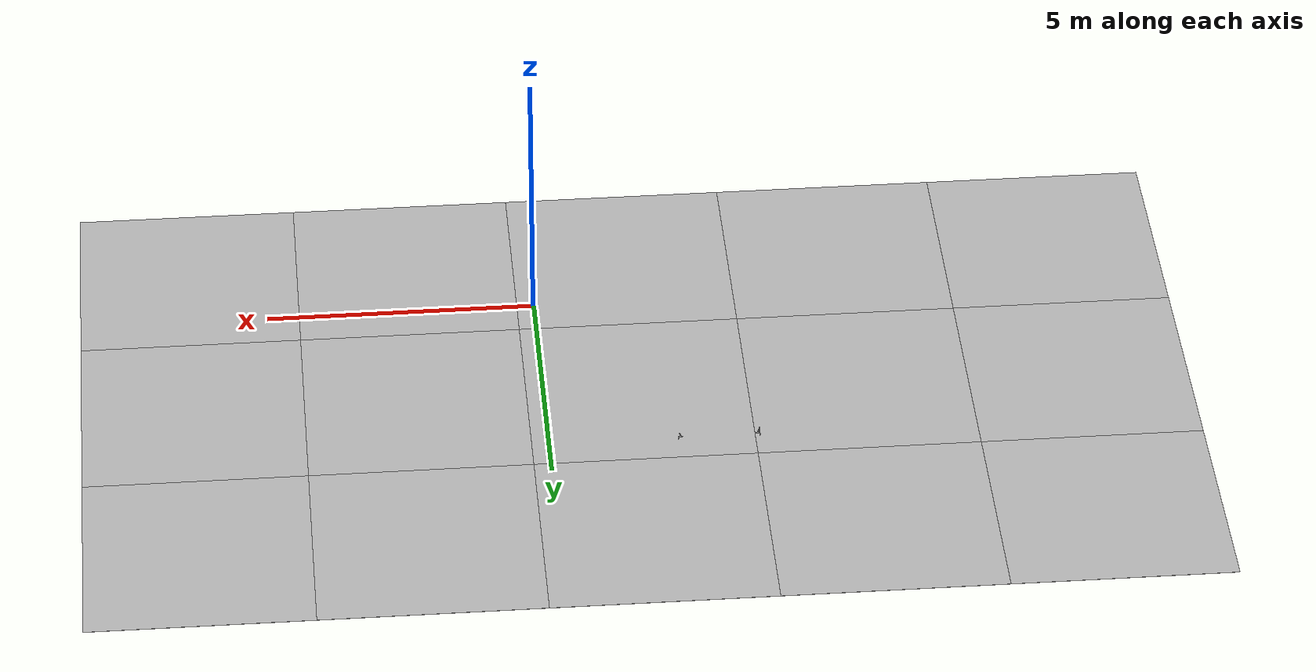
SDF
<sdf version="1.6">
 <world name="default">
  <light name="sun_light" type="directional">
   <pose>0 0 10 0 -0 0</pose>
   <diffuse>0.5 0.5 0.5 1</diffuse>
   <specular>0.1 0.1 0.1 1</specular>
   <direction>0.1 0.1 -0.9</direction>
   <attenuation>
    <range>20</range>
    <constant>0.5</constant>
    <linear>0.01</linear>
    <quadratic>0.001</quadratic>
   </attenuation>
  </light>
  <light name="spot_0" type="spot">
   <pose>0 0 0.2 0 0 0</pose>
   <diffuse>1.0 1.0 1.0 1</diffuse>
   <specular>1.0 1.0 1.0 1</specular>
   <direction>0.1 0.1 -0.9</direction>
   <attenuation>
    <range>20</range>
    <constant>0.5</constant>
    <linear>0.01</linear>
    <quadratic>0.001</quadratic>
   </attenuation>
   <spot><inner_angle>0.4</inner_angle><outer_angle>1.0</outer_angle><falloff>3.0</falloff></spot>
  </light>
  <ogre>
   <ambient>0.5 0.5 0.5 0.5</ambient>
   <sky>
    <material>
     <script>
      <uri>file://materials/scripts</uri>
      <uri>file://materials/textures</uri>
      <name>circus_arena_2k.hdr</name>
     </script>
     <specular>0 0 0 0</specular>
    </material>
   </sky>
   <grid>false</grid>
   <maxUpdateRate>10.</maxUpdateRate>
   <shadowTechnique>none</shadowTechnique>
   <shadows>false</shadows>
  </ogre>
  <model name="Tile/0-0">
   <static>1</static>
   <link name="link">
    <collision name="collision">
     <geometry><plane><normal>0 0 1</normal><size>4.096 4.096</size></plane></geometry>
     <surface><friction><ode><mu>100</mu><mu2>50</mu2></ode></friction></surface>
    </collision>
    <visual name="visual">
     <cast_shadows>0</cast_shadows>
     <geometry><plane><normal>0 0 1</normal><size>4.096 4.096</size></plane></geometry>
     <material>
      <script>
       <uri>file://materials/scripts</uri>
       <uri>file://materials/textures</uri>
       <name>Tile/5eab350b8220ac9944dbdfa4ac3288c7c17e24c3bf5df0dfcf6173d64dae00a1</name>
      </script>
      <specular>1 1 1 1</specular>
     </material>
    </visual>
   </link>
   <pose>-9.92261333537358 -1.3519999999999999 0 0 -0 0</pose>
  </model>
  <model name="Tile/0-1">
   <static>1</static>
   <link name="link">
    <collision name="collision">
     <geometry><plane><normal>0 0 1</normal><size>4.096 4.096</size></plane></geometry>
     <surface><friction><ode><mu>100</mu><mu2>50</mu2></ode></friction></surface>
    </collision>
    <visual name="visual">
     <cast_shadows>0</cast_shadows>
     <geometry><plane><normal>0 0 1</normal><size>4.096 4.096</size></plane></geometry>
     <material>
      <script>
       <uri>file://materials/scripts</uri>
       <uri>file://materials/textures</uri>
       <name>Tile/3058e171fbb32d5e1efde9382a6ab1991b2fd43bcbd21fa34add7239901b9db2</name>
      </script>
      <specular>1 1 1 1</specular>
     </material>
    </visual>
   </link>
   <pose>-9.92261333537358 2.744 0 0 -0 0</pose>
  </model>
  <model name="Tile/0-2">
   <static>1</static>
   <link name="link">
    <collision name="collision">
     <geometry><plane><normal>0 0 1</normal><size>4.096 4.096</size></plane></geometry>
     <surface><friction><ode><mu>100</mu><mu2>50</mu2></ode></friction></surface>
    </collision>
    <visual name="visual">
     <cast_shadows>0</cast_shadows>
     <geometry><plane><normal>0 0 1</normal><size>4.096 4.096</size></plane></geometry>
     <material>
      <script>
       <uri>file://materials/scripts</uri>
       <uri>file://materials/textures</uri>
       <name>Tile/5eab350b8220ac9944dbdfa4ac3288c7c17e24c3bf5df0dfcf6173d64dae00a1</name>
      </script>
      <specular>1 1 1 1</specular>
     </material>
    </visual>
   </link>
   <pose>-9.92261333537358 6.84 0 0 -0 0</pose>
  </model>
  <model name="Tile/1-0">
   <static>1</static>
   <link name="link">
    <collision name="collision">
     <geometry><plane><normal>0 0 1</normal><size>4.096 4.096</size></plane></geometry>
     <surface><friction><ode><mu>100</mu><mu2>50</mu2></ode></friction></surface>
    </collision>
    <visual name="visual">
     <cast_shadows>0</cast_shadows>
     <geometry><plane><normal>0 0 1</normal><size>4.096 4.096</size></plane></geometry>
     <material>
      <script>
       <uri>file://materials/scripts</uri>
       <uri>file://materials/textures</uri>
       <name>Tile/5eab350b8220ac9944dbdfa4ac3288c7c17e24c3bf5df0dfcf6173d64dae00a1</name>
      </script>
      <specular>1 1 1 1</specular>
     </material>
    </visual>
   </link>
   <pose>-5.82661333537358 -1.3519999999999999 0 0 -0 0</pose>
  </model>
  <model name="Tile/1-1">
   <static>1</static>
   <link name="link">
    <collision name="collision">
     <geometry><plane><normal>0 0 1</normal><size>4.096 4.096</size></plane></geometry>
     <surface><friction><ode><mu>100</mu><mu2>50</mu2></ode></friction></surface>
    </collision>
    <visual name="visual">
     <cast_shadows>0</cast_shadows>
     <geometry><plane><normal>0 0 1</normal><size>4.096 4.096</size></plane></geometry>
     <material>
      <script>
       <uri>file://materials/scripts</uri>
       <uri>file://materials/textures</uri>
       <name>Tile/4c5a49df8fd762b76fb459d4d238a3ee13ff72d47765e623aa75a18cee1df7df</name>
      </script>
      <specular>1 1 1 1</specular>
     </material>
    </visual>
   </link>
   <pose>-5.82661333537358 2.744 0 0 -0 0</pose>
  </model>
  <model name="Tile/1-2">
   <static>1</static>
   <link name="link">
    <collision name="collision">
     <geometry><plane><normal>0 0 1</normal><size>4.096 4.096</size></plane></geometry>
     <surface><friction><ode><mu>100</mu><mu2>50</mu2></ode></friction></surface>
    </collision>
    <visual name="visual">
     <cast_shadows>0</cast_shadows>
     <geometry><plane><normal>0 0 1</normal><size>4.096 4.096</size></plane></geometry>
     <material>
      <script>
       <uri>file://materials/scripts</uri>
       <uri>file://materials/textures</uri>
       <name>Tile/5eab350b8220ac9944dbdfa4ac3288c7c17e24c3bf5df0dfcf6173d64dae00a1</name>
      </script>
      <specular>1 1 1 1</specular>
     </material>
    </visual>
   </link>
   <pose>-5.82661333537358 6.84 0 0 -0 0</pose>
  </model>
  <model name="Tile/2-0">
   <static>1</static>
   <link name="link">
    <collision name="collision">
     <geometry><plane><normal>0 0 1</normal><size>4.096 4.096</size></plane></geometry>
     <surface><friction><ode><mu>100</mu><mu2>50</mu2></ode></friction></surface>
    </collision>
    <visual name="visual">
     <cast_shadows>0</cast_shadows>
     <geometry><plane><normal>0 0 1</normal><size>4.096 4.096</size></plane></geometry>
     <material>
      <script>
       <uri>file://materials/scripts</uri>
       <uri>file://materials/textures</uri>
       <name>Tile/f150baf138048eb72484f1afb8df42c5c4e9975beeeb2417d98e699c629234ad</name>
      </script>
      <specular>1 1 1 1</specular>
     </material>
    </visual>
   </link>
   <pose>-1.7306133353735795 -1.3519999999999999 0 0 -0 0</pose>
  </model>
  <model name="Tile/2-1">
   <static>1</static>
   <link name="link">
    <collision name="collision">
     <geometry><plane><normal>0 0 1</normal><size>4.096 4.096</size></plane></geometry>
     <surface><friction><ode><mu>100</mu><mu2>50</mu2></ode></friction></surface>
    </collision>
    <visual name="visual">
     <cast_shadows>0</cast_shadows>
     <geometry><plane><normal>0 0 1</normal><size>4.096 4.096</size></plane></geometry>
     <material>
      <script>
       <uri>file://materials/scripts</uri>
       <uri>file://materials/textures</uri>
       <name>Tile/b54a11ff863b796688012f43434184bd6d4ac46fb7ed48b3a442a526f63d4a6c</name>
      </script>
      <specular>1 1 1 1</specular>
     </material>
    </visual>
   </link>
   <pose>-1.7306133353735795 2.744 0 0 -0 0</pose>
  </model>
  <model name="Tile/2-2">
   <static>1</static>
   <link name="link">
    <collision name="collision">
     <geometry><plane><normal>0 0 1</normal><size>4.096 4.096</size></plane></geometry>
     <surface><friction><ode><mu>100</mu><mu2>50</mu2></ode></friction></surface>
    </collision>
    <visual name="visual">
     <cast_shadows>0</cast_shadows>
     <geometry><plane><normal>0 0 1</normal><size>4.096 4.096</size></plane></geometry>
     <material>
      <script>
       <uri>file://materials/scripts</uri>
       <uri>file://materials/textures</uri>
       <name>Tile/c6e2d9a1d4cde8a86fcd04b97fafd59f5cc725bedb86ecbc7dd504d659f863ee</name>
      </script>
      <specular>1 1 1 1</specular>
     </material>
    </visual>
   </link>
   <pose>-1.7306133353735795 6.84 0 0 -0 0</pose>
  </model>
  <model name="Tile/3-0">
   <static>1</static>
   <link name="link">
    <collision name="collision">
     <geometry><plane><normal>0 0 1</normal><size>4.096 4.096</size></plane></geometry>
     <surface><friction><ode><mu>100</mu><mu2>50</mu2></ode></friction></surface>
    </collision>
    <visual name="visual">
     <cast_shadows>0</cast_shadows>
     <geometry><plane><normal>0 0 1</normal><size>4.096 4.096</size></plane></geometry>
     <material>
      <script>
       <uri>file://materials/scripts</uri>
       <uri>file://materials/textures</uri>
       <name>Tile/70cc846e9450f9366264f8869df33c7098ea8c794df6a8131c5871fa362cb7ed</name>
      </script>
      <specular>1 1 1 1</specular>
     </material>
    </visual>
   </link>
   <pose>2.3653866646264206 -1.3519999999999999 0 0 -0 0</pose>
  </model>
  <model name="Tile/3-1">
   <static>1</static>
   <link name="link">
    <collision name="collision">
     <geometry><plane><normal>0 0 1</normal><size>4.096 4.096</size></plane></geometry>
     <surface><friction><ode><mu>100</mu><mu2>50</mu2></ode></friction></surface>
    </collision>
    <visual name="visual">
     <cast_shadows>0</cast_shadows>
     <geometry><plane><normal>0 0 1</normal><size>4.096 4.096</size></plane></geometry>
     <material>
      <script>
       <uri>file://materials/scripts</uri>
       <uri>file://materials/textures</uri>
       <name>Tile/8f0dc65dcc5c14dfe671c2232e8317c20b4003c43f72e253f356f853e74f4e5f</name>
      </script>
      <specular>1 1 1 1</specular>
     </material>
    </visual>
   </link>
   <pose>2.3653866646264206 2.744 0 0 -0 0</pose>
  </model>
  <model name="Tile/3-2">
   <static>1</static>
   <link name="link">
    <collision name="collision">
     <geometry><plane><normal>0 0 1</normal><size>4.096 4.096</size></plane></geometry>
     <surface><friction><ode><mu>100</mu><mu2>50</mu2></ode></friction></surface>
    </collision>
    <visual name="visual">
     <cast_shadows>0</cast_shadows>
     <geometry><plane><normal>0 0 1</normal><size>4.096 4.096</size></plane></geometry>
     <material>
      <script>
       <uri>file://materials/scripts</uri>
       <uri>file://materials/textures</uri>
       <name>Tile/5eab350b8220ac9944dbdfa4ac3288c7c17e24c3bf5df0dfcf6173d64dae00a1</name>
      </script>
      <specular>1 1 1 1</specular>
     </material>
    </visual>
   </link>
   <pose>2.3653866646264206 6.84 0 0 -0 0</pose>
  </model>
  <model name="Tile/4-0">
   <static>1</static>
   <link name="link">
    <collision name="collision">
     <geometry><plane><normal>0 0 1</normal><size>4.096 4.096</size></plane></geometry>
     <surface><friction><ode><mu>100</mu><mu2>50</mu2></ode></friction></surface>
    </collision>
    <visual name="visual">
     <cast_shadows>0</cast_shadows>
     <geometry><plane><normal>0 0 1</normal><size>4.096 4.096</size></plane></geometry>
     <material>
      <script>
       <uri>file://materials/scripts</uri>
       <uri>file://materials/textures</uri>
       <name>Tile/c88990776df101bf2c237ff6f0fd806e439bd97adb8dfdd77143a78dbd248c2c</name>
      </script>
      <specular>1 1 1 1</specular>
     </material>
    </visual>
   </link>
   <pose>6.461386664626419 -1.3519999999999999 0 0 -0 0</pose>
  </model>
  <model name="Tile/4-1">
   <static>1</static>
   <link name="link">
    <collision name="collision">
     <geometry><plane><normal>0 0 1</normal><size>4.096 4.096</size></plane></geometry>
     <surface><friction><ode><mu>100</mu><mu2>50</mu2></ode></friction></surface>
    </collision>
    <visual name="visual">
     <cast_shadows>0</cast_shadows>
     <geometry><plane><normal>0 0 1</normal><size>4.096 4.096</size></plane></geometry>
     <material>
      <script>
       <uri>file://materials/scripts</uri>
       <uri>file://materials/textures</uri>
       <name>Tile/f1b3b57abc3193dd96c348fb5f4527eb8d7a8468e07ffc149022038b1c2cff34</name>
      </script>
      <specular>1 1 1 1</specular>
     </material>
    </visual>
   </link>
   <pose>6.461386664626419 2.744 0 0 -0 0</pose>
  </model>
  <model name="Tile/4-2">
   <static>1</static>
   <link name="link">
    <collision name="collision">
     <geometry><plane><normal>0 0 1</normal><size>4.096 4.096</size></plane></geometry>
     <surface><friction><ode><mu>100</mu><mu2>50</mu2></ode></friction></surface>
    </collision>
    <visual name="visual">
     <cast_shadows>0</cast_shadows>
     <geometry><plane><normal>0 0 1</normal><size>4.096 4.096</size></plane></geometry>
     <material>
      <script>
       <uri>file://materials/scripts</uri>
       <uri>file://materials/textures</uri>
       <name>Tile/5eab350b8220ac9944dbdfa4ac3288c7c17e24c3bf5df0dfcf6173d64dae00a1</name>
      </script>
      <specular>1 1 1 1</specular>
     </material>
    </visual>
   </link>
   <pose>6.461386664626419 6.84 0 0 -0 0</pose>
  </model>
  <model name="Sign-Sign/-55">
   <link name="link">
    <visual name="visual">
     <geometry>
      <mesh><uri>file://meshes/VorbeifahrtRechts_pedestrian.dae</uri><scale>0.001 0.001 0.001</scale></mesh>
     </geometry>
    </visual>
    <collision name="collision">
     <pose>-0.055 0 0.075 0 0 0</pose>
     <geometry><box><size>0.11 0.15 0.15</size></box></geometry>
    </collision>
   </link>
   <pose>-2.371320343559643 4.214213562373096 0.0 0 0 1.5707963267948966</pose>
  </model>
  <model name="Sign-Sign/-56">
   <link name="link">
    <visual name="visual">
     <geometry>
      <mesh><uri>file://meshes/VorbeifahrtRechts_pedestrian.dae</uri><scale>0.001 0.001 0.001</scale></mesh>
     </geometry>
    </visual>
    <collision name="collision">
     <pose>-0.055 0 0.075 0 0 0</pose>
     <geometry><box><size>0.11 0.15 0.15</size></box></geometry>
    </collision>
   </link>
   <pose>-3.8713203435596424 4.214213562373096 0.0 0 0 4.71238898038469</pose>
  </model>
 </world>
</sdf>
